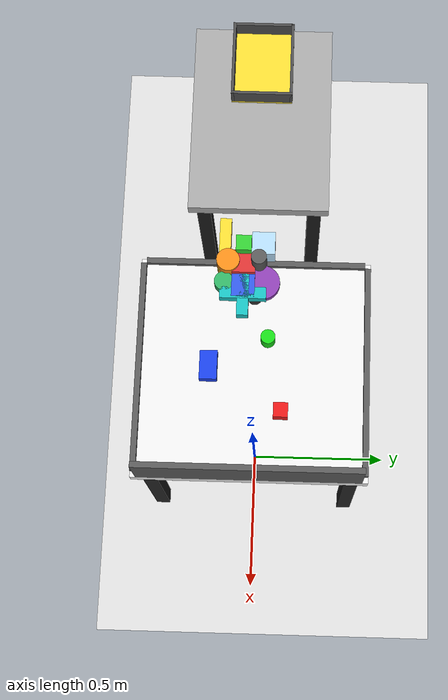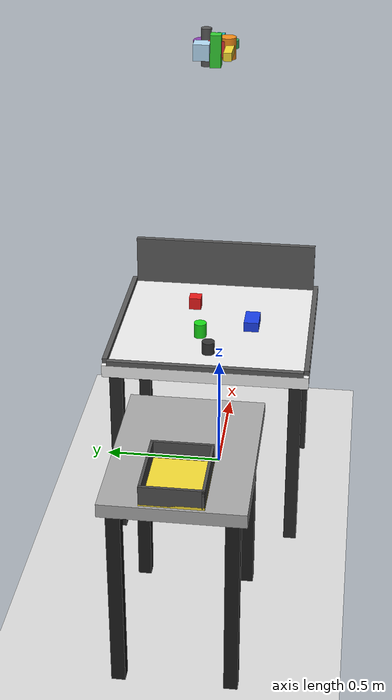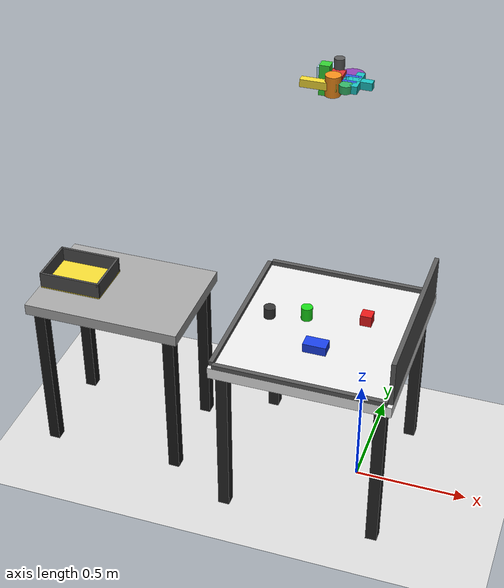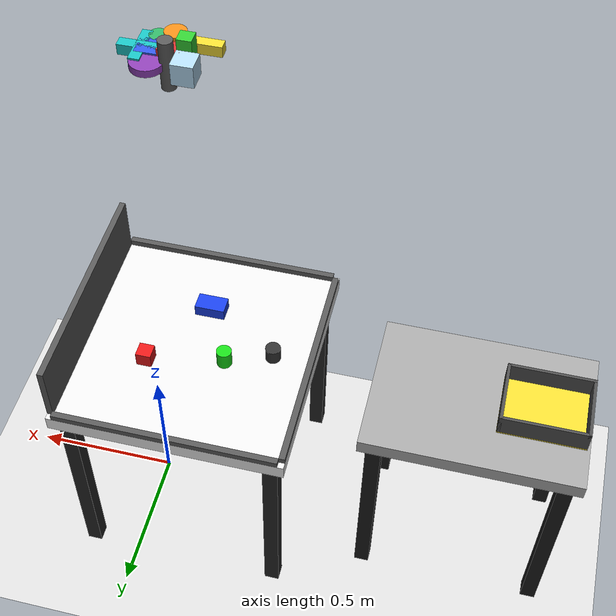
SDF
<sdf version="1.10">
 <world name="ur5_mesa_objetos">
  <plugin filename="gz-sim-physics-system" name="gz::sim::systems::Physics"/>
  <plugin filename="gz-sim-user-commands-system" name="gz::sim::systems::UserCommands"/>
  <plugin filename="gz-sim-scene-broadcaster-system" name="gz::sim::systems::SceneBroadcaster"/>
  <plugin filename="gz-sim-sensors-system" name="gz::sim::systems::Sensors">
   <render_engine>ogre</render_engine>
  </plugin>
  <gravity>0 0 -9.81</gravity>
  <scene>
   <ambient>0.6 0.6 0.6 1</ambient>
   <background>0.95 0.95 0.95 1</background>
   <shadows>true</shadows>
  </scene>
  <physics name="ode_physics" type="ode">
   <max_step_size>0.001</max_step_size>
   <real_time_update_rate>1000</real_time_update_rate>
  </physics>
  <light name="sun_world" type="directional">
   <pose>0 0 10 0 0 0</pose>
   <diffuse>1 1 1 1</diffuse>
   <specular>0.1 0.1 0.1 1</specular>
   <direction>-0.5 0.5 -1</direction>
  </light>
  <model name="ground_plane">
   <static>true</static>
   <link name="link">
    <collision name="collision">
     <geometry><plane><normal>0 0 1</normal><size>100 100</size></plane></geometry>
    </collision>
    <visual name="visual">
     <geometry><plane><normal>0 0 1</normal><size>100 100</size></plane></geometry>
     <material><diffuse>0.85 0.85 0.85 1</diffuse></material>
    </visual>
   </link>
   <plugin filename="gz-sim-pose-publisher-system" name="gz::sim::systems::PosePublisher">
    <publish_pose>true</publish_pose>
    <publish_link_pose>false</publish_link_pose>
    <publish_visual_pose>false</publish_visual_pose>
    <publish_collision_pose>false</publish_collision_pose>
    <static_publisher>false</static_publisher>
   </plugin>
  </model>
  <model name="mesa_pro">
   <static>true</static>
   <pose>-0.17 0 0 0 0 0</pose>
   <link name="link">
    <collision name="tablero_collision">
     <pose>0 0 0.75 0 0 0</pose>
     <geometry><box><size>0.768 0.80 0.05</size></box></geometry>
    </collision>
    <visual name="tablero_visual">
     <pose>0 0 0.75 0 0 0</pose>
     <geometry><box><size>0.768 0.80 0.05</size></box></geometry>
     <material><diffuse>0.92 0.92 0.92 1</diffuse></material>
    </visual>
    <collision name="wall_far_x_pos_c">
     <pose>0.374 0 0.875 0 0 0</pose>
     <geometry><box><size>0.02 0.76 0.20</size></box></geometry>
    </collision>
    <visual name="wall_far_x_pos_v">
     <pose>0.374 0 0.875 0 0 0</pose>
     <geometry><box><size>0.02 0.76 0.20</size></box></geometry>
     <material><diffuse>0.35 0.35 0.35 1</diffuse></material>
    </visual>
    <collision name="wall_near_x_neg_c">
     <pose>-0.374 0 0.785 0 0 0</pose>
     <geometry><box><size>0.02 0.76 0.02</size></box></geometry>
    </collision>
    <visual name="wall_near_x_neg_v">
     <pose>-0.374 0 0.785 0 0 0</pose>
     <geometry><box><size>0.02 0.76 0.02</size></box></geometry>
     <material><diffuse>0.35 0.35 0.35 1</diffuse></material>
    </visual>
    <collision name="wall_north_c">
     <pose>0 0.39 0.785 0 0 0</pose>
     <geometry><box><size>0.728 0.02 0.02</size></box></geometry>
    </collision>
    <visual name="wall_north_v">
     <pose>0 0.39 0.785 0 0 0</pose>
     <geometry><box><size>0.728 0.02 0.02</size></box></geometry>
     <material><diffuse>0.35 0.35 0.35 1</diffuse></material>
    </visual>
    <collision name="wall_south_c">
     <pose>0 -0.39 0.785 0 0 0</pose>
     <geometry><box><size>0.728 0.02 0.02</size></box></geometry>
    </collision>
    <visual name="wall_south_v">
     <pose>0 -0.39 0.785 0 0 0</pose>
     <geometry><box><size>0.728 0.02 0.02</size></box></geometry>
     <material><diffuse>0.35 0.35 0.35 1</diffuse></material>
    </visual>
    <collision name="p1c">
     <pose>0.334  0.35 0.375 0 0 0</pose>
     <geometry><box><size>0.05 0.05 0.75</size></box></geometry>
    </collision>
    <visual name="p1v">
     <pose>0.334  0.35 0.375 0 0 0</pose>
     <geometry><box><size>0.05 0.05 0.75</size></box></geometry>
     <material><diffuse>0.15 0.15 0.15 1</diffuse></material>
    </visual>
    <collision name="p2c">
     <pose>0.334 -0.35 0.375 0 0 0</pose>
     <geometry><box><size>0.05 0.05 0.75</size></box></geometry>
    </collision>
    <visual name="p2v">
     <pose>0.334 -0.35 0.375 0 0 0</pose>
     <geometry><box><size>0.05 0.05 0.75</size></box></geometry>
     <material><diffuse>0.15 0.15 0.15 1</diffuse></material>
    </visual>
    <collision name="p3c">
     <pose>-0.334  0.35 0.375 0 0 0</pose>
     <geometry><box><size>0.05 0.05 0.75</size></box></geometry>
    </collision>
    <visual name="p3v">
     <pose>-0.334  0.35 0.375 0 0 0</pose>
     <geometry><box><size>0.05 0.05 0.75</size></box></geometry>
     <material><diffuse>0.15 0.15 0.15 1</diffuse></material>
    </visual>
    <collision name="p4c">
     <pose>-0.334 -0.35 0.375 0 0 0</pose>
     <geometry><box><size>0.05 0.05 0.75</size></box></geometry>
    </collision>
    <visual name="p4v">
     <pose>-0.334 -0.35 0.375 0 0 0</pose>
     <geometry><box><size>0.05 0.05 0.75</size></box></geometry>
     <material><diffuse>0.15 0.15 0.15 1</diffuse></material>
    </visual>
   </link>
  </model>
  <model name="cubo_rojo">
   <static>false</static>
   <pose>-0.02 0.10 0.80 0 0 0</pose>
   <link name="link">
    <inertial>
     <mass>0.08</mass>
     <inertia><ixx>0.0002</ixx><iyy>0.0002</iyy><izz>0.0002</izz><ixy>0</ixy><ixz>0</ixz><iyz>0</iyz></inertia>
    </inertial>
    <collision name="collision"><geometry><box><size>0.05 0.05 0.05</size></box></geometry></collision>
    <visual name="visual">
     <geometry><box><size>0.05 0.05 0.05</size></box></geometry>
     <material><diffuse>0.90 0.10 0.10 1</diffuse></material>
    </visual>
   </link>
  </model>
  <model name="cilindro_verde">
   <static>false</static>
   <pose>-0.27 0.05 0.80 0 0 0</pose>
   <link name="link">
    <inertial>
     <mass>0.06</mass>
     <inertia><ixx>0.00015</ixx><iyy>0.00015</iyy><izz>0.00015</izz><ixy>0</ixy><ixz>0</ixz><iyz>0</iyz></inertia>
    </inertial>
    <collision name="collision">
     <geometry><cylinder><radius>0.025</radius><length>0.07</length></cylinder></geometry>
    </collision>
    <visual name="visual">
     <geometry><cylinder><radius>0.025</radius><length>0.07</length></cylinder></geometry>
     <material><diffuse>0.10 0.85 0.10 1</diffuse></material>
    </visual>
   </link>
  </model>
  <model name="caja_azul">
   <static>false</static>
   <pose>-0.17 -0.15 0.80 0 0 0</pose>
   <link name="link">
    <inertial>
     <mass>0.10</mass>
     <inertia><ixx>0.00025</ixx><iyy>0.00025</iyy><izz>0.00025</izz><ixy>0</ixy><ixz>0</ixz><iyz>0</iyz></inertia>
    </inertial>
    <collision name="collision"><geometry><box><size>0.10 0.06 0.04</size></box></geometry></collision>
    <visual name="visual">
     <geometry><box><size>0.10 0.06 0.04</size></box></geometry>
     <material><diffuse>0.10 0.25 0.90 1</diffuse></material>
    </visual>
   </link>
  </model>
  <model name="pieza_pick_mesa">
   <static>false</static>
   <pose>-0.42 0.00 0.81 0 0 0</pose>
   <link name="link">
    <inertial>
     <mass>0.08</mass>
     <inertia><ixx>0.0002</ixx><iyy>0.0002</iyy><izz>0.0002</izz><ixy>0</ixy><ixz>0</ixz><iyz>0</iyz></inertia>
    </inertial>
    <collision name="collision">
     <geometry><cylinder><radius>0.025</radius><length>0.05</length></cylinder></geometry>
    </collision>
    <visual name="visual">
     <geometry><cylinder><radius>0.025</radius><length>0.05</length></cylinder></geometry>
     <material><diffuse>0.20 0.20 0.20 1</diffuse></material>
    </visual>
   </link>
  </model>
  <model name="mesa_robot">
   <static>true</static>
   <pose>-1.10 0.00 0 0 0 0</pose>
   <link name="link">
    <collision name="tablero_collision">
     <pose>0 0 0.75 0 0 0</pose>
     <geometry><box><size>0.70 0.50 0.05</size></box></geometry>
    </collision>
    <visual name="tablero_visual">
     <pose>0 0 0.75 0 0 0</pose>
     <geometry><box><size>0.70 0.50 0.05</size></box></geometry>
     <material><diffuse>0.65 0.65 0.65 1</diffuse></material>
    </visual>
    <collision name="p1">
     <pose>0.30  0.20 0.375 0 0 0</pose>
     <geometry><box><size>0.05 0.05 0.75</size></box></geometry>
    </collision>
    <visual name="p1v">
     <pose>0.30  0.20 0.375 0 0 0</pose>
     <geometry><box><size>0.05 0.05 0.75</size></box></geometry>
     <material><diffuse>0.10 0.10 0.10 1</diffuse></material>
    </visual>
    <collision name="p2">
     <pose>0.30 -0.20 0.375 0 0 0</pose>
     <geometry><box><size>0.05 0.05 0.75</size></box></geometry>
    </collision>
    <visual name="p2v">
     <pose>0.30 -0.20 0.375 0 0 0</pose>
     <geometry><box><size>0.05 0.05 0.75</size></box></geometry>
     <material><diffuse>0.10 0.10 0.10 1</diffuse></material>
    </visual>
    <collision name="p3">
     <pose>-0.30  0.20 0.375 0 0 0</pose>
     <geometry><box><size>0.05 0.05 0.75</size></box></geometry>
    </collision>
    <visual name="p3v">
     <pose>-0.30  0.20 0.375 0 0 0</pose>
     <geometry><box><size>0.05 0.05 0.75</size></box></geometry>
     <material><diffuse>0.10 0.10 0.10 1</diffuse></material>
    </visual>
    <collision name="p4">
     <pose>-0.30 -0.20 0.375 0 0 0</pose>
     <geometry><box><size>0.05 0.05 0.75</size></box></geometry>
    </collision>
    <visual name="p4v">
     <pose>-0.30 -0.20 0.375 0 0 0</pose>
     <geometry><box><size>0.05 0.05 0.75</size></box></geometry>
     <material><diffuse>0.10 0.10 0.10 1</diffuse></material>
    </visual>
   </link>
  </model>
  <model name="bandeja_deposito">
   <static>true</static>
   <pose>-1.30 0.00 0.780 0 0 0</pose>
   <link name="link">
    <collision name="base_c"><geometry><box><size>0.28 0.22 0.01</size></box></geometry></collision>
    <visual name="base_v">
     <geometry><box><size>0.28 0.22 0.01</size></box></geometry>
     <material><diffuse>0.95 0.85 0.20 1</diffuse></material>
    </visual>
    <collision name="wall_n_c">
     <pose>0 0.105 0.035 0 0 0</pose>
     <geometry><box><size>0.28 0.01 0.07</size></box></geometry>
    </collision>
    <visual name="wall_n_v">
     <pose>0 0.105 0.035 0 0 0</pose>
     <geometry><box><size>0.28 0.01 0.07</size></box></geometry>
     <material><diffuse>0.30 0.30 0.30 1</diffuse></material>
    </visual>
    <collision name="wall_s_c">
     <pose>0 -0.105 0.035 0 0 0</pose>
     <geometry><box><size>0.28 0.01 0.07</size></box></geometry>
    </collision>
    <visual name="wall_s_v">
     <pose>0 -0.105 0.035 0 0 0</pose>
     <geometry><box><size>0.28 0.01 0.07</size></box></geometry>
     <material><diffuse>0.30 0.30 0.30 1</diffuse></material>
    </visual>
    <collision name="wall_e_c">
     <pose>0.135 0 0.035 0 0 0</pose>
     <geometry><box><size>0.01 0.22 0.07</size></box></geometry>
    </collision>
    <visual name="wall_e_v">
     <pose>0.135 0 0.035 0 0 0</pose>
     <geometry><box><size>0.01 0.22 0.07</size></box></geometry>
     <material><diffuse>0.30 0.30 0.30 1</diffuse></material>
    </visual>
    <collision name="wall_w_c">
     <pose>-0.135 0 0.035 0 0 0</pose>
     <geometry><box><size>0.01 0.22 0.07</size></box></geometry>
    </collision>
    <visual name="wall_w_v">
     <pose>-0.135 0 0.035 0 0 0</pose>
     <geometry><box><size>0.01 0.22 0.07</size></box></geometry>
     <material><diffuse>0.30 0.30 0.30 1</diffuse></material>
    </visual>
   </link>
  </model>
  <joint name="ur5_rg2_fixed_to_world" type="fixed">
   <parent>world</parent>
   <child>ur5_rg2::base_link</child>
  </joint>
  <model name="camera_overhead">
   <static>true</static>
   <pose>-0.85 0.00 1.85 0 1.02 0</pose>
   <link name="link">
    <sensor name="camera_overhead_rgb" type="camera">
     <always_on>true</always_on>
     <update_rate>30</update_rate>
     <topic>/camera_overhead/image</topic>
     <camera>
      <horizontal_fov>0.75</horizontal_fov>
      <image><width>320</width><height>240</height><format>R8G8B8</format></image>
      <clip><near>0.05</near><far>10.0</far></clip>
     </camera>
    </sensor>
    <sensor name="camera_overhead_depth" type="depth_camera">
     <always_on>true</always_on>
     <update_rate>30</update_rate>
     <topic>/camera_overhead/depth_image</topic>
     <camera>
      <horizontal_fov>0.75</horizontal_fov>
      <image><width>320</width><height>240</height><format>R8G8B8</format></image>
      <clip><near>0.05</near><far>10.0</far></clip>
     </camera>
    </sensor>
   </link>
  </model>
  <model name="camera_north">
   <static>true</static>
   <pose>-0.95 0.75 0 0 0 0</pose>
   <link name="link">
    <sensor name="camera_north_rgbd" type="rgbd_camera">
     <pose>0 0 2.90 0 1.05 -0.668</pose>
     <always_on>true</always_on>
     <update_rate>30</update_rate>
     <topic>/camera_north</topic>
     <camera>
      <horizontal_fov>1.047</horizontal_fov>
      <image><width>320</width><height>240</height><format>R8G8B8</format></image>
      <clip><near>0.05</near><far>10.0</far></clip>
     </camera>
    </sensor>
   </link>
  </model>
  <model name="camera_east">
   <static>true</static>
   <pose>0.95 0.75 0 0 0 0</pose>
   <link name="link">
    <sensor name="camera_east_rgbd" type="rgbd_camera">
     <pose>0 0 2.90 0 1.05 -2.475</pose>
     <always_on>true</always_on>
     <update_rate>60</update_rate>
     <topic>/camera_east</topic>
     <camera>
      <horizontal_fov>1.047</horizontal_fov>
      <image><width>320</width><height>240</height><format>R8G8B8</format></image>
      <clip><near>0.05</near><far>10.0</far></clip>
     </camera>
    </sensor>
   </link>
  </model>
  <model name="camera_south">
   <static>true</static>
   <pose>-2.00 0.00 0 0 0 0</pose>
   <link name="link">
    <sensor name="camera_south_rgbd" type="camera">
     <pose>0 0 2.10 0 0.75 0</pose>
     <always_on>true</always_on>
     <update_rate>60</update_rate>
     <topic>/camera_south/image</topic>
     <camera>
      <horizontal_fov>1.047</horizontal_fov>
      <image><width>320</width><height>240</height><format>R8G8B8</format></image>
      <clip><near>0.05</near><far>10.0</far></clip>
     </camera>
    </sensor>
   </link>
  </model>
  <model name="camera_west">
   <static>true</static>
   <pose>1.30 0.00 0 0 0 0</pose>
   <link name="link">
    <sensor name="camera_west_rgbd" type="camera">
     <pose>0 0 2.00 0 0.85 3.1416</pose>
     <always_on>true</always_on>
     <update_rate>60</update_rate>
     <topic>/camera_west/image</topic>
     <camera>
      <horizontal_fov>1.047</horizontal_fov>
      <image><width>320</width><height>240</height><format>R8G8B8</format></image>
      <clip><near>0.05</near><far>10.0</far></clip>
     </camera>
    </sensor>
   </link>
  </model>
  <model name="box_red">
   <static>false</static>
   <pose>-0.170 0.000 1.925 0 0 0</pose>
   <link name="link">
    <inertial>
     <mass>0.12</mass>
     <inertia>
      <ixx>7.199999999999999e-05</ixx>
      <iyy>7.199999999999999e-05</iyy>
      <izz>7.199999999999999e-05</izz>
      <ixy>0</ixy>
      <ixz>0</ixz>
      <iyz>0</iyz>
     </inertia>
    </inertial>
    <collision name="c"><geometry><box><size>0.06 0.06 0.06</size></box></geometry></collision>
    <visual name="v">
     <geometry><box><size>0.06 0.06 0.06</size></box></geometry>
     <material><diffuse>0.85 0.20 0.20 1</diffuse></material>
    </visual>
   </link>
  </model>
  <model name="box_blue">
   <static>false</static>
   <pose>-0.130 0.000 1.925 0 0 0</pose>
   <link name="link">
    <inertial>
     <mass>0.1</mass>
     <inertia>
      <ixx>3.75e-05</ixx>
      <iyy>9.083333333333335e-05</iyy>
      <izz>0.00011333333333333334</izz>
      <ixy>0</ixy>
      <ixz>0</ixz>
      <iyz>0</iyz>
     </inertia>
    </inertial>
    <collision name="c"><geometry><box><size>0.1 0.06 0.03</size></box></geometry></collision>
    <visual name="v">
     <geometry><box><size>0.1 0.06 0.03</size></box></geometry>
     <material><diffuse>0.20 0.35 0.90 1</diffuse></material>
    </visual>
   </link>
  </model>
  <model name="box_green">
   <static>false</static>
   <pose>-0.210 0.000 1.925 0 0 0</pose>
   <link name="link">
    <inertial>
     <mass>0.11</mass>
     <inertia>
      <ixx>0.00014666666666666666</ixx>
      <iyy>0.00014666666666666666</iyy>
      <izz>2.9333333333333336e-05</izz>
      <ixy>0</ixy>
      <ixz>0</ixz>
      <iyz>0</iyz>
     </inertia>
    </inertial>
    <collision name="c"><geometry><box><size>0.04 0.04 0.12</size></box></geometry></collision>
    <visual name="v">
     <geometry><box><size>0.04 0.04 0.12</size></box></geometry>
     <material><diffuse>0.20 0.80 0.20 1</diffuse></material>
    </visual>
   </link>
  </model>
  <model name="cyl_gray">
   <static>false</static>
   <pose>-0.170 0.040 1.925 0 0 0</pose>
   <link name="link">
    <inertial>
     <mass>0.1</mass>
     <inertia>
      <ixx>0.00017333333333333336</ixx>
      <iyy>0.00017333333333333336</iyy>
      <izz>2e-05</izz>
      <ixy>0</ixy>
      <ixz>0</ixz>
      <iyz>0</iyz>
     </inertia>
    </inertial>
    <collision name="c">
     <geometry><cylinder><radius>0.02</radius><length>0.14</length></cylinder></geometry>
    </collision>
    <visual name="v">
     <geometry><cylinder><radius>0.02</radius><length>0.14</length></cylinder></geometry>
     <material><diffuse>0.35 0.35 0.35 1</diffuse></material>
    </visual>
   </link>
  </model>
  <model name="cyl_orange">
   <static>false</static>
   <pose>-0.170 -0.040 1.925 0 0 0</pose>
   <link name="link">
    <inertial>
     <mass>0.09</mass>
     <inertia>
      <ixx>6.825e-05</ixx>
      <iyy>6.825e-05</iyy>
      <izz>4.0499999999999995e-05</izz>
      <ixy>0</ixy>
      <ixz>0</ixz>
      <iyz>0</iyz>
     </inertia>
    </inertial>
    <collision name="c">
     <geometry><cylinder><radius>0.03</radius><length>0.08</length></cylinder></geometry>
    </collision>
    <visual name="v">
     <geometry><cylinder><radius>0.03</radius><length>0.08</length></cylinder></geometry>
     <material><diffuse>0.95 0.55 0.10 1</diffuse></material>
    </visual>
   </link>
  </model>
  <model name="cyl_purple">
   <static>false</static>
   <pose>-0.120 0.050 1.925 0 0 0</pose>
   <link name="link">
    <inertial>
     <mass>0.08</mass>
     <inertia>
      <ixx>4.316666666666667e-05</ixx>
      <iyy>4.316666666666667e-05</iyy>
      <izz>8.099999999999999e-05</izz>
      <ixy>0</ixy>
      <ixz>0</ixz>
      <iyz>0</iyz>
     </inertia>
    </inertial>
    <collision name="c">
     <geometry><cylinder><radius>0.045</radius><length>0.02</length></cylinder></geometry>
    </collision>
    <visual name="v">
     <geometry><cylinder><radius>0.045</radius><length>0.02</length></cylinder></geometry>
     <material><diffuse>0.55 0.25 0.70 1</diffuse></material>
    </visual>
   </link>
  </model>
  <model name="box_lightblue">
   <static>false</static>
   <pose>-0.220 0.050 1.925 0 0 0</pose>
   <link name="link">
    <inertial>
     <mass>0.09</mass>
     <inertia><ixx>5.4e-05</ixx><iyy>5.4e-05</iyy><izz>5.4e-05</izz><ixy>0</ixy><ixz>0</ixz><iyz>0</iyz></inertia>
    </inertial>
    <collision name="c"><geometry><box><size>0.06 0.06 0.06</size></box></geometry></collision>
    <visual name="v">
     <geometry><box><size>0.06 0.06 0.06</size></box></geometry>
     <material><diffuse>0.70 0.85 0.95 1</diffuse></material>
    </visual>
   </link>
  </model>
  <model name="cyl_green">
   <static>false</static>
   <pose>-0.120 -0.050 1.925 0 0 0</pose>
   <link name="link">
    <inertial>
     <mass>0.05</mass>
     <inertia>
      <ixx>1.16e-05</ixx>
      <iyy>1.16e-05</iyy>
      <izz>1.56e-05</izz>
      <ixy>0</ixy>
      <ixz>0</ixz>
      <iyz>0</iyz>
     </inertia>
    </inertial>
    <collision name="c">
     <geometry><cylinder><radius>0.025</radius><length>0.03</length></cylinder></geometry>
    </collision>
    <visual name="v">
     <geometry><cylinder><radius>0.025</radius><length>0.03</length></cylinder></geometry>
     <material><diffuse>0.20 0.70 0.40 1</diffuse></material>
    </visual>
   </link>
  </model>
  <model name="box_yellow">
   <static>false</static>
   <pose>-0.220 -0.050 1.925 0 0 0</pose>
   <link name="link">
    <inertial>
     <mass>0.1</mass>
     <inertia>
      <ixx>1.4999999999999999e-05</ixx>
      <iyy>0.00017083333333333336</iyy>
      <izz>0.00017083333333333336</izz>
      <ixy>0</ixy>
      <ixz>0</ixz>
      <iyz>0</iyz>
     </inertia>
    </inertial>
    <collision name="c"><geometry><box><size>0.14 0.03 0.03</size></box></geometry></collision>
    <visual name="v">
     <geometry><box><size>0.14 0.03 0.03</size></box></geometry>
     <material><diffuse>0.95 0.85 0.20 1</diffuse></material>
    </visual>
   </link>
  </model>
  <model name="cross_cyan">
   <static>false</static>
   <pose>-0.090 0.000 1.925 0 0 0</pose>
   <link name="link_a">
    <inertial>
     <mass>0.07</mass>
     <inertia>
      <ixx>8.925e-05</ixx>
      <iyy>8.925e-05</iyy>
      <izz>0.000168</izz>
      <ixy>0</ixy>
      <ixz>0</ixz>
      <iyz>0</iyz>
     </inertia>
    </inertial>
    <collision name="c1"><geometry><box><size>0.12 0.03 0.03</size></box></geometry></collision>
    <visual name="v1">
     <geometry><box><size>0.12 0.03 0.03</size></box></geometry>
     <material><diffuse>0.10 0.75 0.75 1</diffuse></material>
    </visual>
   </link>
   <link name="link_b">
    <inertial>
     <mass>0.07</mass>
     <inertia>
      <ixx>8.925e-05</ixx>
      <iyy>8.925e-05</iyy>
      <izz>0.000168</izz>
      <ixy>0</ixy>
      <ixz>0</ixz>
      <iyz>0</iyz>
     </inertia>
    </inertial>
    <collision name="c2"><geometry><box><size>0.03 0.12 0.03</size></box></geometry></collision>
    <visual name="v2">
     <geometry><box><size>0.03 0.12 0.03</size></box></geometry>
     <material><diffuse>0.10 0.75 0.75 1</diffuse></material>
    </visual>
   </link>
   <joint name="fixed_joint" type="fixed"><parent>link_a</parent><child>link_b</child></joint>
  </model>
 </world>
</sdf>
